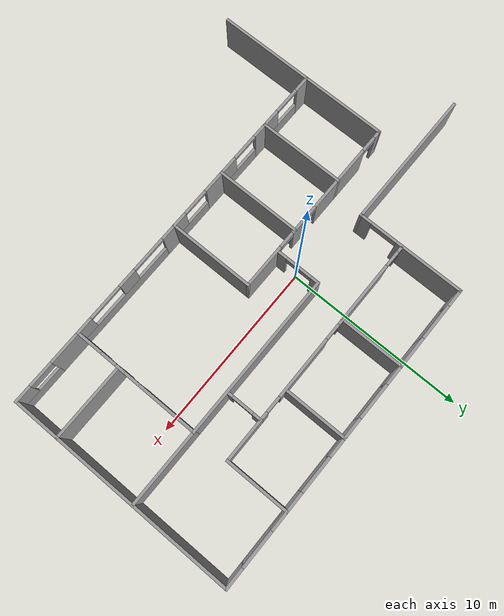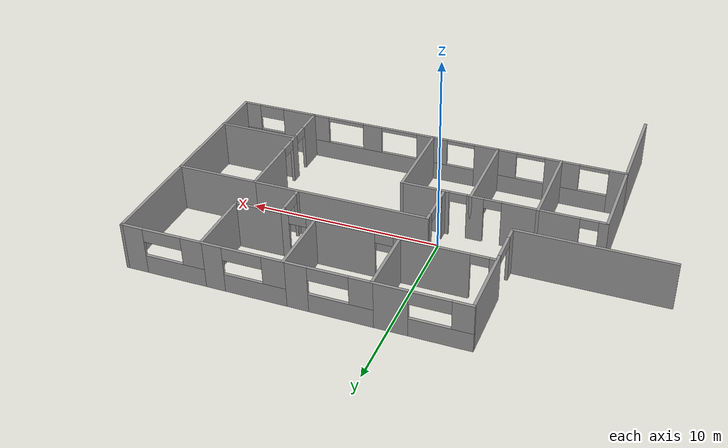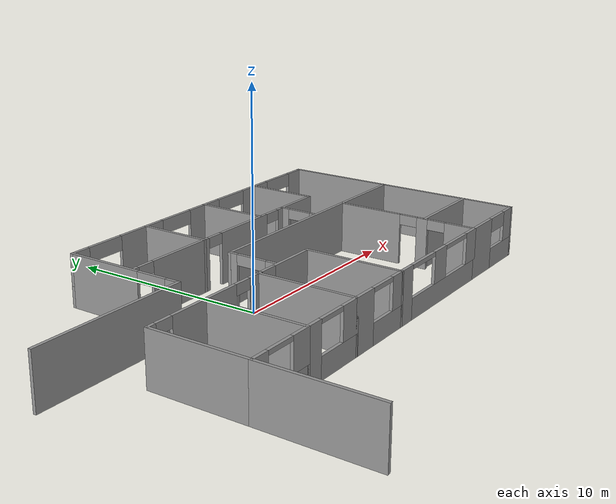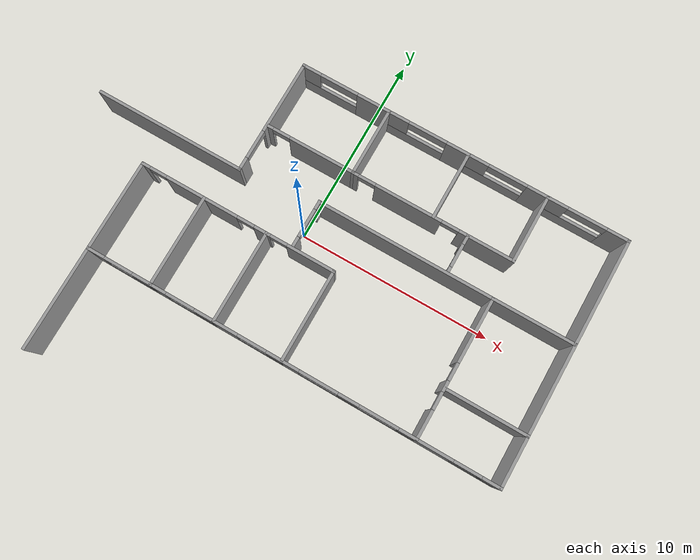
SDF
<sdf version="1.5">
 <model name="Centro_Piaggio">
  <pose>-5.53691 2.63204 0 0 -0 0</pose>
  <link name="Wall_102">
   <collision name="Wall_102_Collision">
    <geometry><box><size>5.4 0.15 2.5</size></box></geometry>
    <pose>0 0 1.25 0 -0 0</pose>
   </collision>
   <visual name="Wall_102_Visual">
    <pose>0 0 1.25 0 -0 0</pose>
    <geometry><box><size>5.4 0.15 2.5</size></box></geometry>
    <material>
     <script><uri>file://media/materials/scripts/gazebo.material</uri><name>Gazebo/Grey</name></script>
    </material>
   </visual>
   <pose>-2.40005 -11.075 0 0 -0 1.57078</pose>
  </link>
  <link name="Wall_104">
   <pose>-0.725 -8.44996 0 0 -0 0</pose>
   <visual name="Wall_104_Visual_0">
    <pose>-1.275 0 1.25 0 -0 0</pose>
    <geometry><box><size>0.949996 0.15 2.5</size></box></geometry>
    <material>
     <script><uri>file://media/materials/scripts/gazebo.material</uri><name>Gazebo/Grey</name></script>
    </material>
   </visual>
   <collision name="Wall_104_Collision_0">
    <geometry><box><size>0.949996 0.15 2.5</size></box></geometry>
    <pose>-1.275 0 1.25 0 -0 0</pose>
   </collision>
   <visual name="Wall_104_Visual_1">
    <pose>0.474998 0 0.5 0 -0 0</pose>
    <geometry><box><size>2.55 0.15 1</size></box></geometry>
    <material>
     <script><uri>file://media/materials/scripts/gazebo.material</uri><name>Gazebo/Grey</name></script>
    </material>
   </visual>
   <collision name="Wall_104_Collision_1">
    <geometry><box><size>2.55 0.15 1</size></box></geometry>
    <pose>0.474998 0 0.5 0 -0 0</pose>
   </collision>
   <visual name="Wall_104_Visual_2">
    <pose>1.225 0 1.75 0 -0 0</pose>
    <geometry><box><size>1.05 0.15 1.5</size></box></geometry>
    <material>
     <script><uri>file://media/materials/scripts/gazebo.material</uri><name>Gazebo/Grey</name></script>
    </material>
   </visual>
   <collision name="Wall_104_Collision_2">
    <geometry><box><size>1.05 0.15 1.5</size></box></geometry>
    <pose>1.225 0 1.75 0 -0 0</pose>
   </collision>
   <visual name="Wall_104_Visual_3">
    <pose>-0.050004 0 2.4 0 -0 0</pose>
    <geometry><box><size>1.5 0.15 0.2</size></box></geometry>
    <material>
     <script><uri>file://media/materials/scripts/gazebo.material</uri><name>Gazebo/Grey</name></script>
    </material>
   </visual>
   <collision name="Wall_104_Collision_3">
    <geometry><box><size>1.5 0.15 0.2</size></box></geometry>
    <pose>-0.050004 0 2.4 0 -0 0</pose>
   </collision>
  </link>
  <link name="Wall_110">
   <collision name="Wall_110_Collision">
    <geometry><box><size>4.8 0.15 2.5</size></box></geometry>
    <pose>0 0 1.25 0 -0 0</pose>
   </collision>
   <visual name="Wall_110_Visual">
    <pose>0 0 1.25 0 -0 0</pose>
    <geometry><box><size>4.8 0.15 2.5</size></box></geometry>
    <material>
     <script><uri>file://media/materials/scripts/gazebo.material</uri><name>Gazebo/Grey</name></script>
    </material>
   </visual>
   <pose>-2.4 -6.12496 0 0 -0 1.5708</pose>
  </link>
  <link name="Wall_113">
   <collision name="Wall_113_Collision">
    <geometry><box><size>4.8 0.15 2.5</size></box></geometry>
    <pose>0 0 1.25 0 -0 0</pose>
   </collision>
   <visual name="Wall_113_Visual">
    <pose>0 0 1.25 0 -0 0</pose>
    <geometry><box><size>4.8 0.15 2.5</size></box></geometry>
    <material>
     <script><uri>file://media/materials/scripts/gazebo.material</uri><name>Gazebo/Grey</name></script>
    </material>
   </visual>
   <pose>0.95 -6.12496 0 0 -0 1.5708</pose>
  </link>
  <link name="Wall_115">
   <pose>2.625 -8.44996 0 0 -0 0</pose>
   <visual name="Wall_115_Visual_0">
    <pose>-1.2984 0 1.25 0 -0 0</pose>
    <geometry><box><size>0.903193 0.15 2.5</size></box></geometry>
    <material>
     <script><uri>file://media/materials/scripts/gazebo.material</uri><name>Gazebo/Grey</name></script>
    </material>
   </visual>
   <collision name="Wall_115_Collision_0">
    <geometry><box><size>0.903193 0.15 2.5</size></box></geometry>
    <pose>-1.2984 0 1.25 0 -0 0</pose>
   </collision>
   <visual name="Wall_115_Visual_1">
    <pose>0.451597 0 0.5 0 -0 0</pose>
    <geometry><box><size>2.59681 0.15 1</size></box></geometry>
    <material>
     <script><uri>file://media/materials/scripts/gazebo.material</uri><name>Gazebo/Grey</name></script>
    </material>
   </visual>
   <collision name="Wall_115_Collision_1">
    <geometry><box><size>2.59681 0.15 1</size></box></geometry>
    <pose>0.451597 0 0.5 0 -0 0</pose>
   </collision>
   <visual name="Wall_115_Visual_2">
    <pose>1.2016 0 1.75 0 -0 0</pose>
    <geometry><box><size>1.09681 0.15 1.5</size></box></geometry>
    <material>
     <script><uri>file://media/materials/scripts/gazebo.material</uri><name>Gazebo/Grey</name></script>
    </material>
   </visual>
   <collision name="Wall_115_Collision_2">
    <geometry><box><size>1.09681 0.15 1.5</size></box></geometry>
    <pose>1.2016 0 1.75 0 -0 0</pose>
   </collision>
   <visual name="Wall_115_Visual_3">
    <pose>-0.096807 0 2.4 0 -0 0</pose>
    <geometry><box><size>1.5 0.15 0.2</size></box></geometry>
    <material>
     <script><uri>file://media/materials/scripts/gazebo.material</uri><name>Gazebo/Grey</name></script>
    </material>
   </visual>
   <collision name="Wall_115_Collision_3">
    <geometry><box><size>1.5 0.15 0.2</size></box></geometry>
    <pose>-0.096807 0 2.4 0 -0 0</pose>
   </collision>
  </link>
  <link name="Wall_119">
   <collision name="Wall_119_Collision">
    <geometry><box><size>4.8 0.15 2.5</size></box></geometry>
    <pose>0 0 1.25 0 -0 0</pose>
   </collision>
   <visual name="Wall_119_Visual">
    <pose>0 0 1.25 0 -0 0</pose>
    <geometry><box><size>4.8 0.15 2.5</size></box></geometry>
    <material>
     <script><uri>file://media/materials/scripts/gazebo.material</uri><name>Gazebo/Grey</name></script>
    </material>
   </visual>
   <pose>4.3 -6.12496 0 0 -0 1.5708</pose>
  </link>
  <link name="Wall_121">
   <pose>6.075 -8.44996 0 0 -0 0</pose>
   <visual name="Wall_121_Visual_0">
    <pose>-1.18918 0 1.25 0 -0 0</pose>
    <geometry><box><size>1.32163 0.15 2.5</size></box></geometry>
    <material>
     <script><uri>file://media/materials/scripts/gazebo.material</uri><name>Gazebo/Grey</name></script>
    </material>
   </visual>
   <collision name="Wall_121_Collision_0">
    <geometry><box><size>1.32163 0.15 2.5</size></box></geometry>
    <pose>-1.18918 0 1.25 0 -0 0</pose>
   </collision>
   <visual name="Wall_121_Visual_1">
    <pose>0.660815 0 0.5 0 -0 0</pose>
    <geometry><box><size>2.37837 0.15 1</size></box></geometry>
    <material>
     <script><uri>file://media/materials/scripts/gazebo.material</uri><name>Gazebo/Grey</name></script>
    </material>
   </visual>
   <collision name="Wall_121_Collision_1">
    <geometry><box><size>2.37837 0.15 1</size></box></geometry>
    <pose>0.660815 0 0.5 0 -0 0</pose>
   </collision>
   <visual name="Wall_121_Visual_2">
    <pose>1.41081 0 1.75 0 -0 0</pose>
    <geometry><box><size>0.878369 0.15 1.5</size></box></geometry>
    <material>
     <script><uri>file://media/materials/scripts/gazebo.material</uri><name>Gazebo/Grey</name></script>
    </material>
   </visual>
   <collision name="Wall_121_Collision_2">
    <geometry><box><size>0.878369 0.15 1.5</size></box></geometry>
    <pose>1.41081 0 1.75 0 -0 0</pose>
   </collision>
   <visual name="Wall_121_Visual_3">
    <pose>0.221631 0 2.4 0 -0 0</pose>
    <geometry><box><size>1.5 0.15 0.2</size></box></geometry>
    <material>
     <script><uri>file://media/materials/scripts/gazebo.material</uri><name>Gazebo/Grey</name></script>
    </material>
   </visual>
   <collision name="Wall_121_Collision_3">
    <geometry><box><size>1.5 0.15 0.2</size></box></geometry>
    <pose>0.221631 0 2.4 0 -0 0</pose>
   </collision>
  </link>
  <link name="Wall_123">
   <collision name="Wall_123_Collision">
    <geometry><box><size>4.8 0.15 2.5</size></box></geometry>
    <pose>0 0 1.25 0 -0 0</pose>
   </collision>
   <visual name="Wall_123_Visual">
    <pose>0 0 1.25 0 -0 0</pose>
    <geometry><box><size>4.8 0.15 2.5</size></box></geometry>
    <material>
     <script><uri>file://media/materials/scripts/gazebo.material</uri><name>Gazebo/Grey</name></script>
    </material>
   </visual>
   <pose>7.85 -6.12496 0 0 -0 1.5708</pose>
  </link>
  <link name="Wall_125">
   <pose>2.725 -3.79996 0 0 -0 0</pose>
   <visual name="Wall_125_Visual_0">
    <pose>-4.96091 0 1.25 0 -0 0</pose>
    <geometry><box><size>0.478182 0.15 2.5</size></box></geometry>
    <material>
     <script><uri>file://media/materials/scripts/gazebo.material</uri><name>Gazebo/Grey</name></script>
    </material>
   </visual>
   <collision name="Wall_125_Collision_0">
    <geometry><box><size>0.478182 0.15 2.5</size></box></geometry>
    <pose>-4.96091 0 1.25 0 -0 0</pose>
   </collision>
   <visual name="Wall_125_Visual_1">
    <pose>-1.9044 0 1.25 0 -0 0</pose>
    <geometry><box><size>3.83483 0.15 2.5</size></box></geometry>
    <material>
     <script><uri>file://media/materials/scripts/gazebo.material</uri><name>Gazebo/Grey</name></script>
    </material>
   </visual>
   <collision name="Wall_125_Collision_1">
    <geometry><box><size>3.83483 0.15 2.5</size></box></geometry>
    <pose>-1.9044 0 1.25 0 -0 0</pose>
   </collision>
   <visual name="Wall_125_Visual_2">
    <pose>1.34082 0 1.25 0 -0 0</pose>
    <geometry><box><size>0.855613 0.15 2.5</size></box></geometry>
    <material>
     <script><uri>file://media/materials/scripts/gazebo.material</uri><name>Gazebo/Grey</name></script>
    </material>
   </visual>
   <collision name="Wall_125_Collision_2">
    <geometry><box><size>0.855613 0.15 2.5</size></box></geometry>
    <pose>1.34082 0 1.25 0 -0 0</pose>
   </collision>
   <visual name="Wall_125_Visual_3">
    <pose>3.93431 0 1.25 0 -0 0</pose>
    <geometry><box><size>2.53137 0.15 2.5</size></box></geometry>
    <material>
     <script><uri>file://media/materials/scripts/gazebo.material</uri><name>Gazebo/Grey</name></script>
    </material>
   </visual>
   <collision name="Wall_125_Collision_3">
    <geometry><box><size>2.53137 0.15 2.5</size></box></geometry>
    <pose>3.93431 0 1.25 0 -0 0</pose>
   </collision>
   <visual name="Wall_125_Visual_4">
    <pose>-4.27182 0 2.25 0 -0 0</pose>
    <geometry><box><size>0.9 0.15 0.5</size></box></geometry>
    <material>
     <script><uri>file://media/materials/scripts/gazebo.material</uri><name>Gazebo/Grey</name></script>
    </material>
   </visual>
   <collision name="Wall_125_Collision_4">
    <geometry><box><size>0.9 0.15 0.5</size></box></geometry>
    <pose>-4.27182 0 2.25 0 -0 0</pose>
   </collision>
   <visual name="Wall_125_Visual_5">
    <pose>0.463017 0 2.25 0 -0 0</pose>
    <geometry><box><size>0.9 0.15 0.5</size></box></geometry>
    <material>
     <script><uri>file://media/materials/scripts/gazebo.material</uri><name>Gazebo/Grey</name></script>
    </material>
   </visual>
   <collision name="Wall_125_Collision_5">
    <geometry><box><size>0.9 0.15 0.5</size></box></geometry>
    <pose>0.463017 0 2.25 0 -0 0</pose>
   </collision>
   <visual name="Wall_125_Visual_6">
    <pose>2.21863 0 2.25 0 -0 0</pose>
    <geometry><box><size>0.9 0.15 0.5</size></box></geometry>
    <material>
     <script><uri>file://media/materials/scripts/gazebo.material</uri><name>Gazebo/Grey</name></script>
    </material>
   </visual>
   <collision name="Wall_125_Collision_6">
    <geometry><box><size>0.9 0.15 0.5</size></box></geometry>
    <pose>2.21863 0 2.25 0 -0 0</pose>
   </collision>
  </link>
  <link name="Wall_127">
   <pose>11.275 -8.44996 0 0 -0 0</pose>
   <visual name="Wall_127_Visual_0">
    <pose>-3.0178 0 1.25 0 -0 0</pose>
    <geometry><box><size>0.9644 0.15 2.5</size></box></geometry>
    <material>
     <script><uri>file://media/materials/scripts/gazebo.material</uri><name>Gazebo/Grey</name></script>
    </material>
   </visual>
   <collision name="Wall_127_Collision_0">
    <geometry><box><size>0.9644 0.15 2.5</size></box></geometry>
    <pose>-3.0178 0 1.25 0 -0 0</pose>
   </collision>
   <visual name="Wall_127_Visual_1">
    <pose>0.4822 0 0.5 0 -0 0</pose>
    <geometry><box><size>6.0356 0.15 1</size></box></geometry>
    <material>
     <script><uri>file://media/materials/scripts/gazebo.material</uri><name>Gazebo/Grey</name></script>
    </material>
   </visual>
   <collision name="Wall_127_Collision_1">
    <geometry><box><size>6.0356 0.15 1</size></box></geometry>
    <pose>0.4822 0 0.5 0 -0 0</pose>
   </collision>
   <visual name="Wall_127_Visual_2">
    <pose>-0.000311 0 1.75 0 -0 0</pose>
    <geometry><box><size>1.07058 0.15 1.5</size></box></geometry>
    <material>
     <script><uri>file://media/materials/scripts/gazebo.material</uri><name>Gazebo/Grey</name></script>
    </material>
   </visual>
   <collision name="Wall_127_Collision_2">
    <geometry><box><size>1.07058 0.15 1.5</size></box></geometry>
    <pose>-0.000311 0 1.75 0 -0 0</pose>
   </collision>
   <visual name="Wall_127_Visual_3">
    <pose>3.01749 0 1.75 0 -0 0</pose>
    <geometry><box><size>0.965022 0.15 1.5</size></box></geometry>
    <material>
     <script><uri>file://media/materials/scripts/gazebo.material</uri><name>Gazebo/Grey</name></script>
    </material>
   </visual>
   <collision name="Wall_127_Collision_3">
    <geometry><box><size>0.965022 0.15 1.5</size></box></geometry>
    <pose>3.01749 0 1.75 0 -0 0</pose>
   </collision>
   <visual name="Wall_127_Visual_4">
    <pose>-1.5356 0 2.4 0 -0 0</pose>
    <geometry><box><size>2 0.15 0.2</size></box></geometry>
    <material>
     <script><uri>file://media/materials/scripts/gazebo.material</uri><name>Gazebo/Grey</name></script>
    </material>
   </visual>
   <collision name="Wall_127_Collision_4">
    <geometry><box><size>2 0.15 0.2</size></box></geometry>
    <pose>-1.5356 0 2.4 0 -0 0</pose>
   </collision>
   <visual name="Wall_127_Visual_5">
    <pose>1.53498 0 2.4 0 -0 0</pose>
    <geometry><box><size>2 0.15 0.2</size></box></geometry>
    <material>
     <script><uri>file://media/materials/scripts/gazebo.material</uri><name>Gazebo/Grey</name></script>
    </material>
   </visual>
   <collision name="Wall_127_Collision_5">
    <geometry><box><size>2 0.15 0.2</size></box></geometry>
    <pose>1.53498 0 2.4 0 -0 0</pose>
   </collision>
  </link>
  <link name="Wall_129">
   <pose>14.7 -4.87496 0 0 -0 1.5708</pose>
   <visual name="Wall_129_Visual_0">
    <pose>-2.87687 0 1.25 0 -0 0</pose>
    <geometry><box><size>1.54626 0.15 2.5</size></box></geometry>
    <material>
     <script><uri>file://media/materials/scripts/gazebo.material</uri><name>Gazebo/Grey</name></script>
    </material>
   </visual>
   <collision name="Wall_129_Collision_0">
    <geometry><box><size>1.54626 0.15 2.5</size></box></geometry>
    <pose>-2.87687 0 1.25 0 -0 0</pose>
   </collision>
   <visual name="Wall_129_Visual_1">
    <pose>-0.922239 0 1.25 0 -0 0</pose>
    <geometry><box><size>0.563011 0.15 2.5</size></box></geometry>
    <material>
     <script><uri>file://media/materials/scripts/gazebo.material</uri><name>Gazebo/Grey</name></script>
    </material>
   </visual>
   <collision name="Wall_129_Collision_1">
    <geometry><box><size>0.563011 0.15 2.5</size></box></geometry>
    <pose>-0.922239 0 1.25 0 -0 0</pose>
   </collision>
   <visual name="Wall_129_Visual_2">
    <pose>1.95463 0 1.25 0 -0 0</pose>
    <geometry><box><size>3.39073 0.15 2.5</size></box></geometry>
    <material>
     <script><uri>file://media/materials/scripts/gazebo.material</uri><name>Gazebo/Grey</name></script>
    </material>
   </visual>
   <collision name="Wall_129_Collision_2">
    <geometry><box><size>3.39073 0.15 2.5</size></box></geometry>
    <pose>1.95463 0 1.25 0 -0 0</pose>
   </collision>
   <visual name="Wall_129_Visual_3">
    <pose>-1.65374 0 2.25 0 -0 0</pose>
    <geometry><box><size>0.9 0.15 0.5</size></box></geometry>
    <material>
     <script><uri>file://media/materials/scripts/gazebo.material</uri><name>Gazebo/Grey</name></script>
    </material>
   </visual>
   <collision name="Wall_129_Collision_3">
    <geometry><box><size>0.9 0.15 0.5</size></box></geometry>
    <pose>-1.65374 0 2.25 0 -0 0</pose>
   </collision>
   <visual name="Wall_129_Visual_4">
    <pose>-0.190733 0 2.25 0 -0 0</pose>
    <geometry><box><size>0.9 0.15 0.5</size></box></geometry>
    <material>
     <script><uri>file://media/materials/scripts/gazebo.material</uri><name>Gazebo/Grey</name></script>
    </material>
   </visual>
   <collision name="Wall_129_Collision_4">
    <geometry><box><size>0.9 0.15 0.5</size></box></geometry>
    <pose>-0.190733 0 2.25 0 -0 0</pose>
   </collision>
  </link>
  <link name="Wall_131">
   <pose>16.775 -8.44996 0 0 -0 0</pose>
   <visual name="Wall_131_Visual_0">
    <pose>-1.19762 0 1.25 0 -0 0</pose>
    <geometry><box><size>1.90475 0.15 2.5</size></box></geometry>
    <material>
     <script><uri>file://media/materials/scripts/gazebo.material</uri><name>Gazebo/Grey</name></script>
    </material>
   </visual>
   <collision name="Wall_131_Collision_0">
    <geometry><box><size>1.90475 0.15 2.5</size></box></geometry>
    <pose>-1.19762 0 1.25 0 -0 0</pose>
   </collision>
   <visual name="Wall_131_Visual_1">
    <pose>0.952375 0 0.5 0 -0 0</pose>
    <geometry><box><size>2.39525 0.15 1</size></box></geometry>
    <material>
     <script><uri>file://media/materials/scripts/gazebo.material</uri><name>Gazebo/Grey</name></script>
    </material>
   </visual>
   <collision name="Wall_131_Collision_1">
    <geometry><box><size>2.39525 0.15 1</size></box></geometry>
    <pose>0.952375 0 0.5 0 -0 0</pose>
   </collision>
   <visual name="Wall_131_Visual_2">
    <pose>1.65237 0 1.75 0 -0 0</pose>
    <geometry><box><size>0.99525 0.15 1.5</size></box></geometry>
    <material>
     <script><uri>file://media/materials/scripts/gazebo.material</uri><name>Gazebo/Grey</name></script>
    </material>
   </visual>
   <collision name="Wall_131_Collision_2">
    <geometry><box><size>0.99525 0.15 1.5</size></box></geometry>
    <pose>1.65237 0 1.75 0 -0 0</pose>
   </collision>
   <visual name="Wall_131_Visual_3">
    <pose>0.45475 0 2.15 0 -0 0</pose>
    <geometry><box><size>1.4 0.15 0.7</size></box></geometry>
    <material>
     <script><uri>file://media/materials/scripts/gazebo.material</uri><name>Gazebo/Grey</name></script>
    </material>
   </visual>
   <collision name="Wall_131_Collision_3">
    <geometry><box><size>1.4 0.15 0.7</size></box></geometry>
    <pose>0.45475 0 2.15 0 -0 0</pose>
   </collision>
  </link>
  <link name="Wall_133">
   <collision name="Wall_133_Collision">
    <geometry><box><size>2.7 0.15 2.5</size></box></geometry>
    <pose>0 0 1.25 0 -0 0</pose>
   </collision>
   <visual name="Wall_133_Visual">
    <pose>0 0 1.25 0 -0 0</pose>
    <geometry><box><size>2.7 0.15 2.5</size></box></geometry>
    <material>
     <script><uri>file://media/materials/scripts/gazebo.material</uri><name>Gazebo/Grey</name></script>
    </material>
   </visual>
   <pose>18.85 -7.17496 0 0 -0 1.5708</pose>
  </link>
  <link name="Wall_135">
   <collision name="Wall_135_Collision">
    <geometry><box><size>4.25 0.15 2.5</size></box></geometry>
    <pose>0 0 1.25 0 -0 0</pose>
   </collision>
   <visual name="Wall_135_Visual">
    <pose>0 0 1.25 0 -0 0</pose>
    <geometry><box><size>4.25 0.15 2.5</size></box></geometry>
    <material>
     <script><uri>file://media/materials/scripts/gazebo.material</uri><name>Gazebo/Grey</name></script>
    </material>
   </visual>
   <pose>16.8 -5.89996 0 0 -0 3.14159</pose>
  </link>
  <link name="Wall_140">
   <collision name="Wall_140_Collision">
    <geometry><box><size>4.3 0.15 2.5</size></box></geometry>
    <pose>0 0 1.25 0 -0 0</pose>
   </collision>
   <visual name="Wall_140_Visual">
    <pose>0 0 1.25 0 -0 0</pose>
    <geometry><box><size>4.3 0.15 2.5</size></box></geometry>
    <material>
     <script><uri>file://media/materials/scripts/gazebo.material</uri><name>Gazebo/Grey</name></script>
    </material>
   </visual>
   <pose>16.775 -1.29996 0 0 -0 0</pose>
  </link>
  <link name="Wall_142">
   <collision name="Wall_142_Collision">
    <geometry><box><size>4.75 0.15 2.5</size></box></geometry>
    <pose>0 0 1.25 0 -0 0</pose>
   </collision>
   <visual name="Wall_142_Visual">
    <pose>0 0 1.25 0 -0 0</pose>
    <geometry><box><size>4.75 0.15 2.5</size></box></geometry>
    <material>
     <script><uri>file://media/materials/scripts/gazebo.material</uri><name>Gazebo/Grey</name></script>
    </material>
   </visual>
   <pose>18.85 -3.59996 0 0 -0 1.5708</pose>
  </link>
  <link name="Wall_144">
   <collision name="Wall_144_Collision">
    <geometry><box><size>9.2 0.15 2.5</size></box></geometry>
    <pose>0 0 1.25 0 -0 0</pose>
   </collision>
   <visual name="Wall_144_Visual">
    <pose>0 0 1.25 0 -0 0</pose>
    <geometry><box><size>9.2 0.15 2.5</size></box></geometry>
    <material>
     <script><uri>file://media/materials/scripts/gazebo.material</uri><name>Gazebo/Grey</name></script>
    </material>
   </visual>
   <pose>10.175 -1.29996 0 0 -0 3.14159</pose>
  </link>
  <link name="Wall_146">
   <pose>5.65 -2.47496 0 0 0 -1.5708</pose>
   <visual name="Wall_146_Visual_0">
    <pose>-1.00804 0 1.25 0 -0 0</pose>
    <geometry><box><size>0.483914 0.15 2.5</size></box></geometry>
    <material>
     <script><uri>file://media/materials/scripts/gazebo.material</uri><name>Gazebo/Grey</name></script>
    </material>
   </visual>
   <collision name="Wall_146_Collision_0">
    <geometry><box><size>0.483914 0.15 2.5</size></box></geometry>
    <pose>-1.00804 0 1.25 0 -0 0</pose>
   </collision>
   <visual name="Wall_146_Visual_1">
    <pose>0.991957 0 1.25 0 -0 0</pose>
    <geometry><box><size>0.516086 0.15 2.5</size></box></geometry>
    <material>
     <script><uri>file://media/materials/scripts/gazebo.material</uri><name>Gazebo/Grey</name></script>
    </material>
   </visual>
   <collision name="Wall_146_Collision_1">
    <geometry><box><size>0.516086 0.15 2.5</size></box></geometry>
    <pose>0.991957 0 1.25 0 -0 0</pose>
   </collision>
   <visual name="Wall_146_Visual_2">
    <pose>-0.016086 0 2.25 0 -0 0</pose>
    <geometry><box><size>1.5 0.15 0.5</size></box></geometry>
    <material>
     <script><uri>file://media/materials/scripts/gazebo.material</uri><name>Gazebo/Grey</name></script>
    </material>
   </visual>
   <collision name="Wall_146_Collision_2">
    <geometry><box><size>1.5 0.15 0.5</size></box></geometry>
    <pose>-0.016086 0 2.25 0 -0 0</pose>
   </collision>
  </link>
  <link name="Wall_148">
   <collision name="Wall_148_Collision">
    <geometry><box><size>5.6 0.15 2.5</size></box></geometry>
    <pose>0 0 1.25 0 -0 0</pose>
   </collision>
   <visual name="Wall_148_Visual">
    <pose>0 0 1.25 0 -0 0</pose>
    <geometry><box><size>5.6 0.15 2.5</size></box></geometry>
    <material>
     <script><uri>file://media/materials/scripts/gazebo.material</uri><name>Gazebo/Grey</name></script>
    </material>
   </visual>
   <pose>18.85 1.42504 0 0 -0 1.5708</pose>
  </link>
  <link name="Wall_150">
   <pose>16.775 4.15004 0 0 -0 3.14159</pose>
   <visual name="Wall_150_Visual_0">
    <pose>-1.55853 0 1.25 0 -0 0</pose>
    <geometry><box><size>1.18295 0.15 2.5</size></box></geometry>
    <material>
     <script><uri>file://media/materials/scripts/gazebo.material</uri><name>Gazebo/Grey</name></script>
    </material>
   </visual>
   <collision name="Wall_150_Collision_0">
    <geometry><box><size>1.18295 0.15 2.5</size></box></geometry>
    <pose>-1.55853 0 1.25 0 -0 0</pose>
   </collision>
   <visual name="Wall_150_Visual_1">
    <pose>0.591474 0 0.5 0 -0 0</pose>
    <geometry><box><size>3.11705 0.15 1</size></box></geometry>
    <material>
     <script><uri>file://media/materials/scripts/gazebo.material</uri><name>Gazebo/Grey</name></script>
    </material>
   </visual>
   <collision name="Wall_150_Collision_1">
    <geometry><box><size>3.11705 0.15 1</size></box></geometry>
    <pose>0.591474 0 0.5 0 -0 0</pose>
   </collision>
   <visual name="Wall_150_Visual_2">
    <pose>1.59147 0 1.75 0 -0 0</pose>
    <geometry><box><size>1.11705 0.15 1.5</size></box></geometry>
    <material>
     <script><uri>file://media/materials/scripts/gazebo.material</uri><name>Gazebo/Grey</name></script>
    </material>
   </visual>
   <collision name="Wall_150_Collision_2">
    <geometry><box><size>1.11705 0.15 1.5</size></box></geometry>
    <pose>1.59147 0 1.75 0 -0 0</pose>
   </collision>
   <visual name="Wall_150_Visual_3">
    <pose>0.032948 0 2.15 0 -0 0</pose>
    <geometry><box><size>2 0.15 0.7</size></box></geometry>
    <material>
     <script><uri>file://media/materials/scripts/gazebo.material</uri><name>Gazebo/Grey</name></script>
    </material>
   </visual>
   <collision name="Wall_150_Collision_3">
    <geometry><box><size>2 0.15 0.7</size></box></geometry>
    <pose>0.032948 0 2.15 0 -0 0</pose>
   </collision>
  </link>
  <link name="Wall_152">
   <collision name="Wall_152_Collision">
    <geometry><box><size>3.6 0.15 2.5</size></box></geometry>
    <pose>0 0 1.25 0 -0 0</pose>
   </collision>
   <visual name="Wall_152_Visual">
    <pose>0 0 1.25 0 -0 0</pose>
    <geometry><box><size>3.6 0.15 2.5</size></box></geometry>
    <material>
     <script><uri>file://media/materials/scripts/gazebo.material</uri><name>Gazebo/Grey</name></script>
    </material>
   </visual>
   <pose>14.7 2.42504 0 0 0 -1.5708</pose>
  </link>
  <link name="Wall_154">
   <collision name="Wall_154_Collision">
    <geometry><box><size>2.5 0.15 2.5</size></box></geometry>
    <pose>0 0 1.25 0 -0 0</pose>
   </collision>
   <visual name="Wall_154_Visual">
    <pose>0 0 1.25 0 -0 0</pose>
    <geometry><box><size>2.5 0.15 2.5</size></box></geometry>
    <material>
     <script><uri>file://media/materials/scripts/gazebo.material</uri><name>Gazebo/Grey</name></script>
    </material>
   </visual>
   <pose>13.525 0.700041 0 0 -0 3.14159</pose>
  </link>
  <link name="Wall_156">
   <pose>12.625 4.15004 0 0 -0 3.14159</pose>
   <visual name="Wall_156_Visual_0">
    <pose>-1.57444 0 1.25 0 -0 0</pose>
    <geometry><box><size>1.15112 0.15 2.5</size></box></geometry>
    <material>
     <script><uri>file://media/materials/scripts/gazebo.material</uri><name>Gazebo/Grey</name></script>
    </material>
   </visual>
   <collision name="Wall_156_Collision_0">
    <geometry><box><size>1.15112 0.15 2.5</size></box></geometry>
    <pose>-1.57444 0 1.25 0 -0 0</pose>
   </collision>
   <visual name="Wall_156_Visual_1">
    <pose>0.575558 0 0.5 0 -0 0</pose>
    <geometry><box><size>3.14888 0.15 1</size></box></geometry>
    <material>
     <script><uri>file://media/materials/scripts/gazebo.material</uri><name>Gazebo/Grey</name></script>
    </material>
   </visual>
   <collision name="Wall_156_Collision_1">
    <geometry><box><size>3.14888 0.15 1</size></box></geometry>
    <pose>0.575558 0 0.5 0 -0 0</pose>
   </collision>
   <visual name="Wall_156_Visual_2">
    <pose>1.57556 0 1.75 0 -0 0</pose>
    <geometry><box><size>1.14888 0.15 1.5</size></box></geometry>
    <material>
     <script><uri>file://media/materials/scripts/gazebo.material</uri><name>Gazebo/Grey</name></script>
    </material>
   </visual>
   <collision name="Wall_156_Collision_2">
    <geometry><box><size>1.14888 0.15 1.5</size></box></geometry>
    <pose>1.57556 0 1.75 0 -0 0</pose>
   </collision>
   <visual name="Wall_156_Visual_3">
    <pose>0.001117 0 2.15 0 -0 0</pose>
    <geometry><box><size>2 0.15 0.7</size></box></geometry>
    <material>
     <script><uri>file://media/materials/scripts/gazebo.material</uri><name>Gazebo/Grey</name></script>
    </material>
   </visual>
   <collision name="Wall_156_Collision_3">
    <geometry><box><size>2 0.15 0.7</size></box></geometry>
    <pose>0.001117 0 2.15 0 -0 0</pose>
   </collision>
  </link>
  <link name="Wall_158">
   <pose>12.35 -0.224959 0 0 0 -1.5708</pose>
   <visual name="Wall_158_Visual_0">
    <pose>-0.735712 0 1.25 0 -0 0</pose>
    <geometry><box><size>0.528576 0.15 2.5</size></box></geometry>
    <material>
     <script><uri>file://media/materials/scripts/gazebo.material</uri><name>Gazebo/Grey</name></script>
    </material>
   </visual>
   <collision name="Wall_158_Collision_0">
    <geometry><box><size>0.528576 0.15 2.5</size></box></geometry>
    <pose>-0.735712 0 1.25 0 -0 0</pose>
   </collision>
   <visual name="Wall_158_Visual_1">
    <pose>0.864288 0 1.25 0 -0 0</pose>
    <geometry><box><size>0.271424 0.15 2.5</size></box></geometry>
    <material>
     <script><uri>file://media/materials/scripts/gazebo.material</uri><name>Gazebo/Grey</name></script>
    </material>
   </visual>
   <collision name="Wall_158_Collision_1">
    <geometry><box><size>0.271424 0.15 2.5</size></box></geometry>
    <pose>0.864288 0 1.25 0 -0 0</pose>
   </collision>
   <visual name="Wall_158_Visual_2">
    <pose>0.128576 0 2.25 0 -0 0</pose>
    <geometry><box><size>1.2 0.15 0.5</size></box></geometry>
    <material>
     <script><uri>file://media/materials/scripts/gazebo.material</uri><name>Gazebo/Grey</name></script>
    </material>
   </visual>
   <collision name="Wall_158_Collision_2">
    <geometry><box><size>1.2 0.15 0.5</size></box></geometry>
    <pose>0.128576 0 2.25 0 -0 0</pose>
   </collision>
  </link>
  <link name="Wall_160">
   <collision name="Wall_160_Collision">
    <geometry><box><size>3.6 0.15 2.5</size></box></geometry>
    <pose>0 0 1.25 0 -0 0</pose>
   </collision>
   <visual name="Wall_160_Visual">
    <pose>0 0 1.25 0 -0 0</pose>
    <geometry><box><size>3.6 0.15 2.5</size></box></geometry>
    <material>
     <script><uri>file://media/materials/scripts/gazebo.material</uri><name>Gazebo/Grey</name></script>
    </material>
   </visual>
   <pose>10.55 2.42504 0 0 0 -1.5708</pose>
  </link>
  <link name="Wall_162">
   <pose>8.425 4.15004 0 0 -0 3.14159</pose>
   <visual name="Wall_162_Visual_0">
    <pose>-1.5826 0 1.25 0 -0 0</pose>
    <geometry><box><size>1.23479 0.15 2.5</size></box></geometry>
    <material>
     <script><uri>file://media/materials/scripts/gazebo.material</uri><name>Gazebo/Grey</name></script>
    </material>
   </visual>
   <collision name="Wall_162_Collision_0">
    <geometry><box><size>1.23479 0.15 2.5</size></box></geometry>
    <pose>-1.5826 0 1.25 0 -0 0</pose>
   </collision>
   <visual name="Wall_162_Visual_1">
    <pose>0.617397 0 0.5 0 -0 0</pose>
    <geometry><box><size>3.16521 0.15 1</size></box></geometry>
    <material>
     <script><uri>file://media/materials/scripts/gazebo.material</uri><name>Gazebo/Grey</name></script>
    </material>
   </visual>
   <collision name="Wall_162_Collision_1">
    <geometry><box><size>3.16521 0.15 1</size></box></geometry>
    <pose>0.617397 0 0.5 0 -0 0</pose>
   </collision>
   <visual name="Wall_162_Visual_2">
    <pose>1.6174 0 1.75 0 -0 0</pose>
    <geometry><box><size>1.16521 0.15 1.5</size></box></geometry>
    <material>
     <script><uri>file://media/materials/scripts/gazebo.material</uri><name>Gazebo/Grey</name></script>
    </material>
   </visual>
   <collision name="Wall_162_Collision_2">
    <geometry><box><size>1.16521 0.15 1.5</size></box></geometry>
    <pose>1.6174 0 1.75 0 -0 0</pose>
   </collision>
   <visual name="Wall_162_Visual_3">
    <pose>0.034793 0 2.15 0 -0 0</pose>
    <geometry><box><size>2 0.15 0.7</size></box></geometry>
    <material>
     <script><uri>file://media/materials/scripts/gazebo.material</uri><name>Gazebo/Grey</name></script>
    </material>
   </visual>
   <collision name="Wall_162_Collision_3">
    <geometry><box><size>2 0.15 0.7</size></box></geometry>
    <pose>0.034793 0 2.15 0 -0 0</pose>
   </collision>
  </link>
  <link name="Wall_164">
   <collision name="Wall_164_Collision">
    <geometry><box><size>3.6 0.15 2.5</size></box></geometry>
    <pose>0 0 1.25 0 -0 0</pose>
   </collision>
   <visual name="Wall_164_Visual">
    <pose>0 0 1.25 0 -0 0</pose>
    <geometry><box><size>3.6 0.15 2.5</size></box></geometry>
    <material>
     <script><uri>file://media/materials/scripts/gazebo.material</uri><name>Gazebo/Grey</name></script>
    </material>
   </visual>
   <pose>6.3 2.42504 0 0 0 -1.5708</pose>
  </link>
  <link name="Wall_166">
   <pose>3.975 4.15004 0 0 -0 3.14159</pose>
   <visual name="Wall_166_Visual_0">
    <pose>-1.51162 0 1.25 0 -0 0</pose>
    <geometry><box><size>1.77676 0.15 2.5</size></box></geometry>
    <material>
     <script><uri>file://media/materials/scripts/gazebo.material</uri><name>Gazebo/Grey</name></script>
    </material>
   </visual>
   <collision name="Wall_166_Collision_0">
    <geometry><box><size>1.77676 0.15 2.5</size></box></geometry>
    <pose>-1.51162 0 1.25 0 -0 0</pose>
   </collision>
   <visual name="Wall_166_Visual_1">
    <pose>0.888378 0 0.5 0 -0 0</pose>
    <geometry><box><size>3.02324 0.15 1</size></box></geometry>
    <material>
     <script><uri>file://media/materials/scripts/gazebo.material</uri><name>Gazebo/Grey</name></script>
    </material>
   </visual>
   <collision name="Wall_166_Collision_1">
    <geometry><box><size>3.02324 0.15 1</size></box></geometry>
    <pose>0.888378 0 0.5 0 -0 0</pose>
   </collision>
   <visual name="Wall_166_Visual_2">
    <pose>1.88838 0 1.75 0 -0 0</pose>
    <geometry><box><size>1.02324 0.15 1.5</size></box></geometry>
    <material>
     <script><uri>file://media/materials/scripts/gazebo.material</uri><name>Gazebo/Grey</name></script>
    </material>
   </visual>
   <collision name="Wall_166_Collision_2">
    <geometry><box><size>1.02324 0.15 1.5</size></box></geometry>
    <pose>1.88838 0 1.75 0 -0 0</pose>
   </collision>
   <visual name="Wall_166_Visual_3">
    <pose>0.376756 0 2.15 0 -0 0</pose>
    <geometry><box><size>2 0.15 0.7</size></box></geometry>
    <material>
     <script><uri>file://media/materials/scripts/gazebo.material</uri><name>Gazebo/Grey</name></script>
    </material>
   </visual>
   <collision name="Wall_166_Collision_3">
    <geometry><box><size>2 0.15 0.7</size></box></geometry>
    <pose>0.376756 0 2.15 0 -0 0</pose>
   </collision>
  </link>
  <link name="Wall_168">
   <pose>1.65 1.17504 0 0 0 -1.5708</pose>
   <visual name="Wall_168_Visual_0">
    <pose>-1.11548 0 1.25 0 -0 0</pose>
    <geometry><box><size>3.86903 0.15 2.5</size></box></geometry>
    <material>
     <script><uri>file://media/materials/scripts/gazebo.material</uri><name>Gazebo/Grey</name></script>
    </material>
   </visual>
   <collision name="Wall_168_Collision_0">
    <geometry><box><size>3.86903 0.15 2.5</size></box></geometry>
    <pose>-1.11548 0 1.25 0 -0 0</pose>
   </collision>
   <visual name="Wall_168_Visual_1">
    <pose>2.68452 0 1.25 0 -0 0</pose>
    <geometry><box><size>0.730968 0.15 2.5</size></box></geometry>
    <material>
     <script><uri>file://media/materials/scripts/gazebo.material</uri><name>Gazebo/Grey</name></script>
    </material>
   </visual>
   <collision name="Wall_168_Collision_1">
    <geometry><box><size>0.730968 0.15 2.5</size></box></geometry>
    <pose>2.68452 0 1.25 0 -0 0</pose>
   </collision>
   <visual name="Wall_168_Visual_2">
    <pose>1.56903 0 2.25 0 -0 0</pose>
    <geometry><box><size>1.5 0.15 0.5</size></box></geometry>
    <material>
     <script><uri>file://media/materials/scripts/gazebo.material</uri><name>Gazebo/Grey</name></script>
    </material>
   </visual>
   <collision name="Wall_168_Collision_2">
    <geometry><box><size>1.5 0.15 0.5</size></box></geometry>
    <pose>1.56903 0 2.25 0 -0 0</pose>
   </collision>
  </link>
  <link name="Wall_170">
   <pose>7.05 0.700041 0 0 -0 3.14159</pose>
   <visual name="Wall_170_Visual_0">
    <pose>-5.10679 0 1.25 0 -0 0</pose>
    <geometry><box><size>0.536421 0.15 2.5</size></box></geometry>
    <material>
     <script><uri>file://media/materials/scripts/gazebo.material</uri><name>Gazebo/Grey</name></script>
    </material>
   </visual>
   <collision name="Wall_170_Collision_0">
    <geometry><box><size>0.536421 0.15 2.5</size></box></geometry>
    <pose>-5.10679 0 1.25 0 -0 0</pose>
   </collision>
   <visual name="Wall_170_Visual_1">
    <pose>-2.19406 0 1.25 0 -0 0</pose>
    <geometry><box><size>3.48903 0.15 2.5</size></box></geometry>
    <material>
     <script><uri>file://media/materials/scripts/gazebo.material</uri><name>Gazebo/Grey</name></script>
    </material>
   </visual>
   <collision name="Wall_170_Collision_1">
    <geometry><box><size>3.48903 0.15 2.5</size></box></geometry>
    <pose>-2.19406 0 1.25 0 -0 0</pose>
   </collision>
   <visual name="Wall_170_Visual_2">
    <pose>2.30137 0 1.25 0 -0 0</pose>
    <geometry><box><size>3.70183 0.15 2.5</size></box></geometry>
    <material>
     <script><uri>file://media/materials/scripts/gazebo.material</uri><name>Gazebo/Grey</name></script>
    </material>
   </visual>
   <collision name="Wall_170_Collision_2">
    <geometry><box><size>3.70183 0.15 2.5</size></box></geometry>
    <pose>2.30137 0 1.25 0 -0 0</pose>
   </collision>
   <visual name="Wall_170_Visual_3">
    <pose>5.21364 0 1.25 0 -0 0</pose>
    <geometry><box><size>0.322712 0.15 2.5</size></box></geometry>
    <material>
     <script><uri>file://media/materials/scripts/gazebo.material</uri><name>Gazebo/Grey</name></script>
    </material>
   </visual>
   <collision name="Wall_170_Collision_3">
    <geometry><box><size>0.322712 0.15 2.5</size></box></geometry>
    <pose>5.21364 0 1.25 0 -0 0</pose>
   </collision>
   <visual name="Wall_170_Visual_4">
    <pose>-4.38858 0 2.25 0 -0 0</pose>
    <geometry><box><size>0.9 0.15 0.5</size></box></geometry>
    <material>
     <script><uri>file://media/materials/scripts/gazebo.material</uri><name>Gazebo/Grey</name></script>
    </material>
   </visual>
   <collision name="Wall_170_Collision_4">
    <geometry><box><size>0.9 0.15 0.5</size></box></geometry>
    <pose>-4.38858 0 2.25 0 -0 0</pose>
   </collision>
   <visual name="Wall_170_Visual_5">
    <pose>0.000454 0 2.25 0 -0 0</pose>
    <geometry><box><size>0.9 0.15 0.5</size></box></geometry>
    <material>
     <script><uri>file://media/materials/scripts/gazebo.material</uri><name>Gazebo/Grey</name></script>
    </material>
   </visual>
   <collision name="Wall_170_Collision_5">
    <geometry><box><size>0.9 0.15 0.5</size></box></geometry>
    <pose>0.000454 0 2.25 0 -0 0</pose>
   </collision>
   <visual name="Wall_170_Visual_6">
    <pose>4.60229 0 2.25 0 -0 0</pose>
    <geometry><box><size>0.9 0.15 0.5</size></box></geometry>
    <material>
     <script><uri>file://media/materials/scripts/gazebo.material</uri><name>Gazebo/Grey</name></script>
    </material>
   </visual>
   <collision name="Wall_170_Collision_6">
    <geometry><box><size>0.9 0.15 0.5</size></box></geometry>
    <pose>4.60229 0 2.25 0 -0 0</pose>
   </collision>
  </link>
  <link name="Wall_172">
   <collision name="Wall_172_Collision">
    <geometry><box><size>7.8 0.15 2.5</size></box></geometry>
    <pose>0 0 1.25 0 -0 0</pose>
   </collision>
   <visual name="Wall_172_Visual">
    <pose>0 0 1.25 0 -0 0</pose>
    <geometry><box><size>7.8 0.15 2.5</size></box></geometry>
    <material>
     <script><uri>file://media/materials/scripts/gazebo.material</uri><name>Gazebo/Grey</name></script>
    </material>
   </visual>
   <pose>-2.175 -1.79996 0 0 -0 3.14159</pose>
  </link>
  <static>1</static>
 </model>
</sdf>
